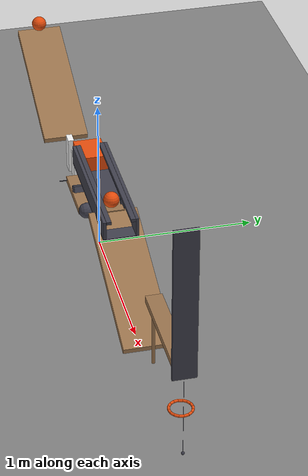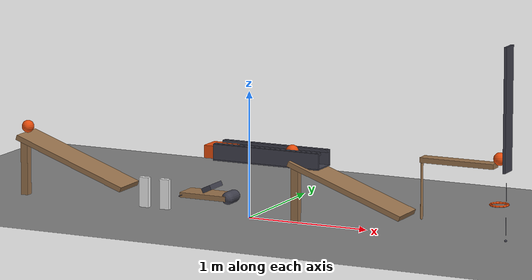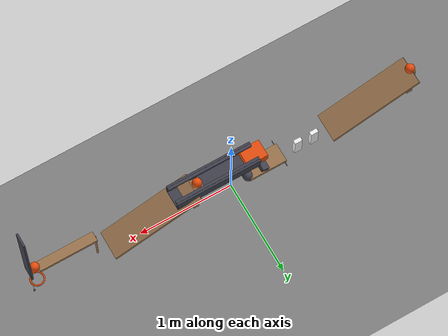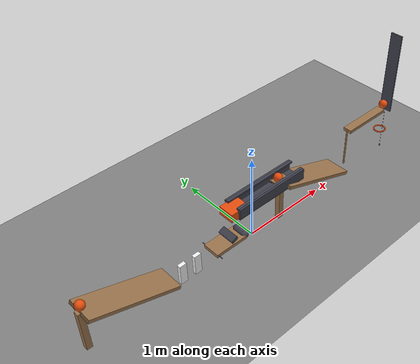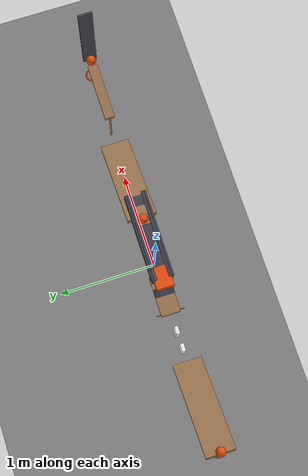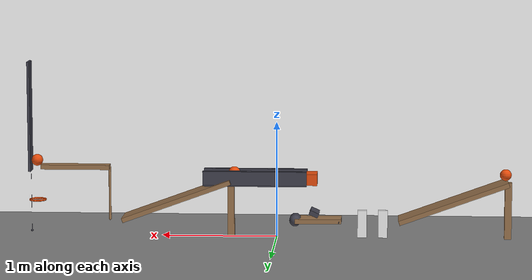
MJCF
<mujoco model="guided_cart_with_round_flap_striker">
  <compiler angle="radian"/>
  <option timestep="0.002"/>
  <worldbody>
    <geom name="floor" type="plane" size="8 8 0.1" friction="0.7 0 0"/>
    <body name="ramp1">
      <geom name="ramp1_deck" type="box" pos="-1.53015 0 0.32101" size="0.5 0.15 0.02" euler="0 0.349066 0" friction="0.7 0 0" solref="0.01 1" rgba="0.6 0.45 0.3 1"/>
      <geom name="ramp1_leg" type="box" pos="-2 0 0.24601" size="0.03 0.03 0.24601" friction="0.7 0 0" solref="0.01 1" rgba="0.6 0.45 0.3 1"/>
    </body>
    <body name="ball1" pos="-1.97606 0 0.557799">
      <freejoint/>
      <geom name="ball1" type="sphere" pos="0 0 0" size="0.05" mass="0.2" condim="6" friction="0.7 0 0" solref="0.01 1" rgba="0.9 0.3 0.05 1"/>
    </body>
    <body name="domino1" pos="-0.920307 0 0.12">
      <freejoint/>
      <geom name="domino1" type="box" pos="0 0 0" size="0.04 0.02 0.12" mass="0.25" friction="0.7 0 0" solref="0.01 1" rgba="0.95 0.95 0.95 1"/>
    </body>
    <body name="domino2" pos="-0.740307 0 0.12">
      <freejoint/>
      <geom name="domino2" type="box" pos="0 0 0" size="0.04 0.02 0.12" mass="0.25" friction="0.7 0 0" solref="0.01 1" rgba="0.95 0.95 0.95 1"/>
    </body>
    <body name="flap1" pos="-0.560307 0 0.15">
      <joint name="flap_hinge" type="hinge" pos="0 0 0" axis="0 1 0" limited="true" range="-1.5708 -0.436332" damping="0.04"/>
      <geom name="flap1" type="box" pos="0.2 0 0" size="0.2 0.1 0.02" mass="0.29" friction="0.7 0 0" solref="0.01 1" rgba="0.6 0.45 0.3 1"/>
      <geom name="flap striker" type="capsule" size="0.05" fromto="0.4 0.05 0 0.4 -0.05 0" mass="0.01" friction="0.7 0 0" solref="0.01 1" rgba="0.25 0.25 0.3 1"/>
      <geom name="flap drive ballast" type="box" pos="0.02 0 0" size="0.0025 0.15 0.0025" mass="1500" friction="0.7 0 0" solref="0.01 1" rgba="0.25 0.25 0.3 1"/>
    </body>
    <body name="flap stop">
      <geom name="flap stop" type="box" pos="-0.325889 0 0.215176" size="0.04 0.1 0.02" euler="0 -0.436332 0" friction="0.7 0 0" solref="0.01 1" rgba="0.25 0.25 0.3 1"/>
    </body>
    <body name="cart track">
      <geom name="cart track" type="box" pos="0.189693 0 0.458304" size="0.45 0.11 0.005" friction="0.7 0 0" solref="0.01 1" rgba="0.25 0.25 0.3 1"/>
    </body>
    <body name="cart guide left">
      <geom name="cart guide left" type="box" pos="0.189693 0.101 0.523304" size="0.45 0.01 0.06" friction="0.7 0 0" solref="0.01 1" rgba="0.25 0.25 0.3 1"/>
    </body>
    <body name="cart guide right">
      <geom name="cart guide right" type="box" pos="0.189693 -0.101 0.523304" size="0.45 0.01 0.06" friction="0.7 0 0" solref="0.01 1" rgba="0.25 0.25 0.3 1"/>
    </body>
    <body name="cart hold down left">
      <geom name="cart hold down left" type="box" pos="0.189693 0.075 0.574804" size="0.45 0.015 0.01" friction="0.7 0 0" solref="0.01 1" rgba="0.25 0.25 0.3 1"/>
    </body>
    <body name="cart hold down right">
      <geom name="cart hold down right" type="box" pos="0.189693 -0.075 0.574804" size="0.45 0.015 0.01" friction="0.7 0 0" solref="0.01 1" rgba="0.25 0.25 0.3 1"/>
    </body>
    <body name="cart1" pos="-0.240307 0 0.513304">
      <freejoint/>
      <geom name="cart1" type="box" pos="0 0 0" size="0.11 0.09 0.05" mass="0.5" friction="0.7 0 0" solref="0.01 1" rgba="0.9 0.3 0.05 1"/>
    </body>
    <body name="cart bumper left">
      <geom name="cart bumper left" type="box" pos="0.349693 0.075 0.513304" size="0.01 0.015 0.05" friction="0.7 0 0" solref="0.01 1" rgba="0.25 0.25 0.3 1"/>
    </body>
    <body name="cart bumper right">
      <geom name="cart bumper right" type="box" pos="0.349693 -0.075 0.513304" size="0.01 0.015 0.05" friction="0.7 0 0" solref="0.01 1" rgba="0.25 0.25 0.3 1"/>
    </body>
    <body name="ball2 cradle">
      <geom name="ball2 cradle" type="box" pos="0.369693 0 0.508304" size="0.05 0.07 0.005" friction="0.7 0 0" solref="0.01 1" rgba="0.6 0.45 0.3 1"/>
    </body>
    <body name="ramp2">
      <geom name="ramp2_deck" type="box" pos="0.869539 0 0.32101" size="0.5 0.15 0.02" euler="0 0.349066 0" friction="0.7 0 0" solref="0.01 1" rgba="0.6 0.45 0.3 1"/>
      <geom name="ramp2_leg" type="box" pos="0.399693 0 0.24601" size="0.03 0.03 0.24601" friction="0.7 0 0" solref="0.01 1" rgba="0.6 0.45 0.3 1"/>
    </body>
    <body name="ball2" pos="0.369693 0 0.563304">
      <freejoint/>
      <geom name="ball2" type="sphere" pos="0 0 0" size="0.05" mass="0.2" condim="6" friction="0.7 0 0" solref="0.01 1" rgba="0.9 0.3 0.05 1"/>
    </body>
    <body name="lever1" pos="1.75939 0 0.6">
      <joint name="lever_hinge" type="hinge" pos="0 0 0" axis="0 1 0" limited="true" range="-0.785398 0" damping="0.04"/>
      <geom name="lever1" type="box" pos="0 0 0" size="0.3 0.05 0.02" mass="0.45" friction="0.7 0 0" solref="0.01 1" rgba="0.6 0.45 0.3 1"/>
      <geom name="lever striker" type="capsule" size="0.01" fromto="-0.3 0 0 -0.3 0 -0.46" mass="0.05" friction="0.7 0 0" solref="0.01 1" rgba="0.6 0.45 0.3 1"/>
    </body>
    <body name="ball3" pos="2.09439 0 0.655707">
      <freejoint/>
      <geom name="ball3" type="sphere" pos="0 0 0" size="0.05" mass="0.2" condim="6" friction="0.7 0 0" solref="0.01 1" rgba="0.9 0.3 0.05 1"/>
    </body>
    <body name="ball3 vertical guide">
      <geom name="ball3 vertical guide" type="box" pos="2.15439 0 1.04" size="0.01 0.07 0.48" friction="0.7 0 0" solref="0.01 1" rgba="0.25 0.25 0.3 1"/>
    </body>
    <body name="ring1">
      <geom name="ring1_00" type="capsule" size="0.008" fromto="2.16239 0 0.305707 2.15721 0.0260225 0.305707" friction="0.7 0 0" solref="0.01 1" rgba="0.9 0.3 0.05 1"/>
      <geom name="ring1_01" type="capsule" size="0.008" fromto="2.15721 0.0260225 0.305707 2.14247 0.0480833 0.305707" friction="0.7 0 0" solref="0.01 1" rgba="0.9 0.3 0.05 1"/>
      <geom name="ring1_02" type="capsule" size="0.008" fromto="2.14247 0.0480833 0.305707 2.12041 0.0628238 0.305707" friction="0.7 0 0" solref="0.01 1" rgba="0.9 0.3 0.05 1"/>
      <geom name="ring1_03" type="capsule" size="0.008" fromto="2.12041 0.0628238 0.305707 2.09439 0.068 0.305707" friction="0.7 0 0" solref="0.01 1" rgba="0.9 0.3 0.05 1"/>
      <geom name="ring1_04" type="capsule" size="0.008" fromto="2.09439 0.068 0.305707 2.06836 0.0628238 0.305707" friction="0.7 0 0" solref="0.01 1" rgba="0.9 0.3 0.05 1"/>
      <geom name="ring1_05" type="capsule" size="0.008" fromto="2.06836 0.0628238 0.305707 2.0463 0.0480833 0.305707" friction="0.7 0 0" solref="0.01 1" rgba="0.9 0.3 0.05 1"/>
      <geom name="ring1_06" type="capsule" size="0.008" fromto="2.0463 0.0480833 0.305707 2.03156 0.0260225 0.305707" friction="0.7 0 0" solref="0.01 1" rgba="0.9 0.3 0.05 1"/>
      <geom name="ring1_07" type="capsule" size="0.008" fromto="2.03156 0.0260225 0.305707 2.02639 8.3276e-18 0.305707" friction="0.7 0 0" solref="0.01 1" rgba="0.9 0.3 0.05 1"/>
      <geom name="ring1_08" type="capsule" size="0.008" fromto="2.02639 8.3276e-18 0.305707 2.03156 -0.0260225 0.305707" friction="0.7 0 0" solref="0.01 1" rgba="0.9 0.3 0.05 1"/>
      <geom name="ring1_09" type="capsule" size="0.008" fromto="2.03156 -0.0260225 0.305707 2.0463 -0.0480833 0.305707" friction="0.7 0 0" solref="0.01 1" rgba="0.9 0.3 0.05 1"/>
      <geom name="ring1_10" type="capsule" size="0.008" fromto="2.0463 -0.0480833 0.305707 2.06836 -0.0628238 0.305707" friction="0.7 0 0" solref="0.01 1" rgba="0.9 0.3 0.05 1"/>
      <geom name="ring1_11" type="capsule" size="0.008" fromto="2.06836 -0.0628238 0.305707 2.09439 -0.068 0.305707" friction="0.7 0 0" solref="0.01 1" rgba="0.9 0.3 0.05 1"/>
      <geom name="ring1_12" type="capsule" size="0.008" fromto="2.09439 -0.068 0.305707 2.12041 -0.0628238 0.305707" friction="0.7 0 0" solref="0.01 1" rgba="0.9 0.3 0.05 1"/>
      <geom name="ring1_13" type="capsule" size="0.008" fromto="2.12041 -0.0628238 0.305707 2.14247 -0.0480833 0.305707" friction="0.7 0 0" solref="0.01 1" rgba="0.9 0.3 0.05 1"/>
      <geom name="ring1_14" type="capsule" size="0.008" fromto="2.14247 -0.0480833 0.305707 2.15721 -0.0260225 0.305707" friction="0.7 0 0" solref="0.01 1" rgba="0.9 0.3 0.05 1"/>
      <geom name="ring1_15" type="capsule" size="0.008" fromto="2.15721 -0.0260225 0.305707 2.16239 -1.66552e-17 0.305707" friction="0.7 0 0" solref="0.01 1" rgba="0.9 0.3 0.05 1"/>
    </body>
    <body name="pendulum1" pos="2.14939 0 0.531728">
      <joint name="pendulum_hinge" type="hinge" pos="0 0 0" axis="0 1 0" damping="0.04"/>
      <geom name="pendulum1" type="sphere" pos="0 0 -0.5" size="0.01" mass="0.34" friction="0.7 0 0" solref="0.01 1" rgba="0.25 0.25 0.3 1"/>
      <geom name="pendulum rod" type="capsule" size="0.001" fromto="0 0 0 0 0 -0.49" mass="0.01" friction="0.7 0 0" solref="0.01 1" rgba="0.25 0.25 0.3 1"/>
    </body>
  </worldbody>
  <keyframe>
    <key name="start" qpos="-1.97606 0 0.557799 1 0 0 0 -0.920307 0 0.12 1 0 0 0 -0.740307 0 0.12 1 0 0 0 -1.5708 -0.240307 0 0.513304 1 0 0 0 0.369693 0 0.563304 1 0 0 0 0 2.09439 0 0.655707 1 0 0 0 0" qvel="0 0 0 0 0 0 0 0 0 0 0 0 0 0 0 0 0 0 0 0 0 0 0 0 0 0 0 0 0 0 0 0 0 0 0 0 0 0 0"/>
  </keyframe>
</mujoco>
